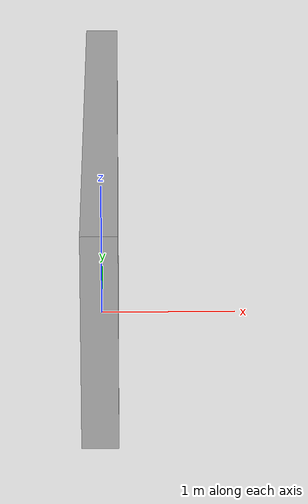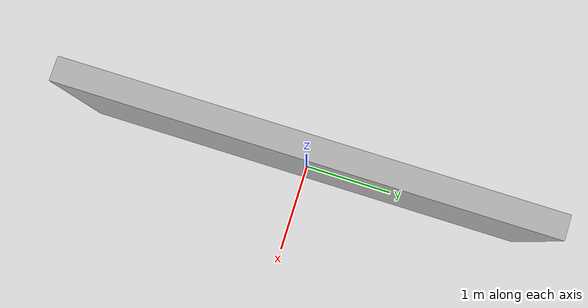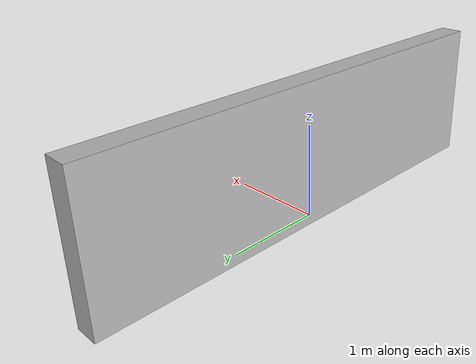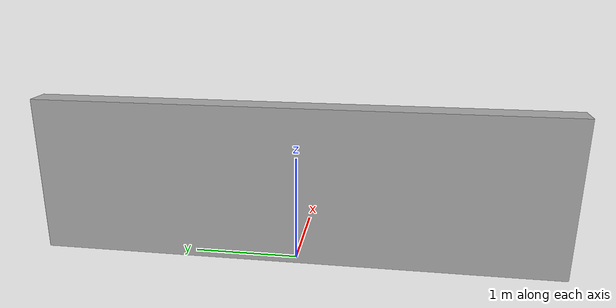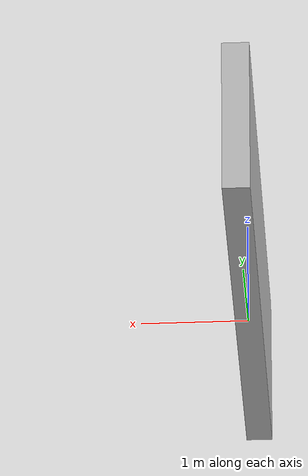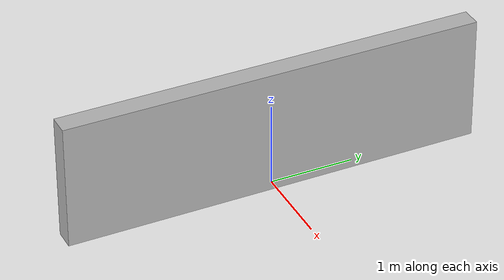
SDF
<sdf version="1.5">
  <model name="Robot">
    <link name="Robot">
      <visual name="visual_Wall.019">
        <pose>0.0 0.0 0.0 0.0 0.0 -1.57</pose>
        <geometry>
          <mesh>
            <uri>package://ngcs_models/room_assets/half_wall_vertical.obj</uri>
          </mesh>
        </geometry>
      </visual>
      <collision name="collision_Wall.019">
        <pose>0.0 0.0 0.75 0.0 0.0 0.0</pose>
        <geometry>
          <box>
            <size>0.25 5.0 1.5</size>
          </box>
        </geometry>
      </collision>
    </link>
    <frame name="frame_AboveHalfWall">
      <pose>0.0 0.0 2.25 0.0 0.0 0.0</pose>
    </frame>
  </model>
</sdf>
